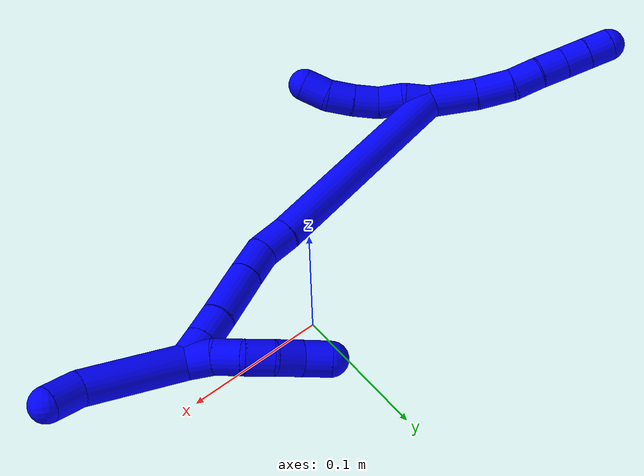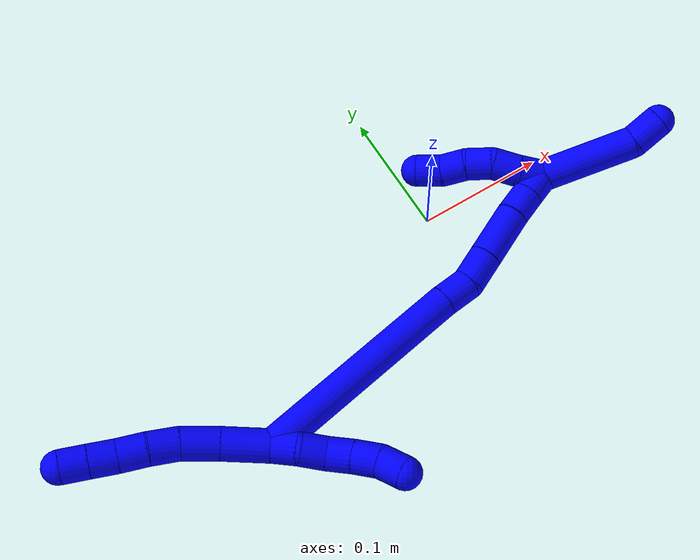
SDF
<sdf version="1.7">
 <world name="default">
  <model name="1">
   <static>0</static>
   <link name="1">
    <collision name="collision-cylinder-e_1_2_8">
     <pose>3e-05 -3.6e-05 0.018359 0.001963 0.001641 2e-06</pose>
     <geometry><cylinder><radius>0.0125</radius><length>0.036718</length></cylinder></geometry>
     <surface>
      <friction><ode><mu>1.16</mu><mu2>1.16</mu2><slip1>0</slip1><slip2>0</slip2></ode></friction>
      <contact><ode><kp>1e+06</kp><kd>1</kd><max_vel>0</max_vel><min_depth>0.001</min_depth></ode></contact>
     </surface>
    </collision>
    <visual name="visual-cylinder-e_1_2_8">
     <pose>3e-05 -3.6e-05 0.018359 0.001963 0.001641 2e-06</pose>
     <geometry><cylinder><radius>0.0125</radius><length>0.036718</length></cylinder></geometry>
     <material><ambient>0 0 1 1</ambient></material>
    </visual>
    <collision name="collision-cylinder-e_2_8_9">
     <pose>0.000289 -0.001512 0.051095 0.099801 0.015853 0.000792</pose>
     <geometry><cylinder><radius>0.0125</radius><length>0.028903</length></cylinder></geometry>
     <surface>
      <friction><ode><mu>1.16</mu><mu2>1.16</mu2><slip1>0</slip1><slip2>0</slip2></ode></friction>
      <contact><ode><kp>1e+06</kp><kd>1</kd><max_vel>0</max_vel><min_depth>0.001</min_depth></ode></contact>
     </surface>
    </collision>
    <visual name="visual-cylinder-e_2_8_9">
     <pose>0.000289 -0.001512 0.051095 0.099801 0.015853 0.000792</pose>
     <geometry><cylinder><radius>0.0125</radius><length>0.028903</length></cylinder></geometry>
     <material><ambient>0 0 1 1</ambient></material>
    </visual>
    <collision name="collision-cylinder-e_3_9_10">
     <pose>-0.000356 -0.005992 0.076378 0.271946 -0.077096 -0.010553</pose>
     <geometry><cylinder><radius>0.0125</radius><length>0.022709</length></cylinder></geometry>
     <surface>
      <friction><ode><mu>1.16</mu><mu2>1.16</mu2><slip1>0</slip1><slip2>0</slip2></ode></friction>
      <contact><ode><kp>1e+06</kp><kd>1</kd><max_vel>0</max_vel><min_depth>0.001</min_depth></ode></contact>
     </surface>
    </collision>
    <visual name="visual-cylinder-e_3_9_10">
     <pose>-0.000356 -0.005992 0.076378 0.271946 -0.077096 -0.010553</pose>
     <geometry><cylinder><radius>0.0125</radius><length>0.022709</length></cylinder></geometry>
     <material><ambient>0 0 1 1</ambient></material>
    </visual>
    <collision name="collision-cylinder-e_4_10_11">
     <pose>-0.003152 -0.011409 0.097521 0.228044 -0.180839 -0.020765</pose>
     <geometry><cylinder><radius>0.0125</radius><length>0.02137</length></cylinder></geometry>
     <surface>
      <friction><ode><mu>1.16</mu><mu2>1.16</mu2><slip1>0</slip1><slip2>0</slip2></ode></friction>
      <contact><ode><kp>1e+06</kp><kd>1</kd><max_vel>0</max_vel><min_depth>0.001</min_depth></ode></contact>
     </surface>
    </collision>
    <visual name="visual-cylinder-e_4_10_11">
     <pose>-0.003152 -0.011409 0.097521 0.228044 -0.180839 -0.020765</pose>
     <geometry><cylinder><radius>0.0125</radius><length>0.02137</length></cylinder></geometry>
     <material><ambient>0 0 1 1</ambient></material>
    </visual>
    <collision name="collision-cylinder-e_5_11_12">
     <pose>-0.00626 -0.016148 0.117515 0.237602 -0.117623 -0.014056</pose>
     <geometry><cylinder><radius>0.0125</radius><length>0.020213</length></cylinder></geometry>
     <surface>
      <friction><ode><mu>1.16</mu><mu2>1.16</mu2><slip1>0</slip1><slip2>0</slip2></ode></friction>
      <contact><ode><kp>1e+06</kp><kd>1</kd><max_vel>0</max_vel><min_depth>0.001</min_depth></ode></contact>
     </surface>
    </collision>
    <visual name="visual-cylinder-e_5_11_12">
     <pose>-0.00626 -0.016148 0.117515 0.237602 -0.117623 -0.014056</pose>
     <geometry><cylinder><radius>0.0125</radius><length>0.020213</length></cylinder></geometry>
     <material><ambient>0 0 1 1</ambient></material>
    </visual>
    <collision name="collision-cylinder-e_6_12_6">
     <pose>-0.008784 -0.020814 0.136953 0.233504 -0.133547 -0.015686</pose>
     <geometry><cylinder><radius>0.0125</radius><length>0.020087</length></cylinder></geometry>
     <surface>
      <friction><ode><mu>1.16</mu><mu2>1.16</mu2><slip1>0</slip1><slip2>0</slip2></ode></friction>
      <contact><ode><kp>1e+06</kp><kd>1</kd><max_vel>0</max_vel><min_depth>0.001</min_depth></ode></contact>
     </surface>
    </collision>
    <visual name="visual-cylinder-e_6_12_6">
     <pose>-0.008784 -0.020814 0.136953 0.233504 -0.133547 -0.015686</pose>
     <geometry><cylinder><radius>0.0125</radius><length>0.020087</length></cylinder></geometry>
     <material><ambient>0 0 1 1</ambient></material>
    </visual>
    <collision name="collision-cylinder-e_1_2_13">
     <pose>0.000846 -0.002404 -0.00967 2.89791 0.084709 0.66641</pose>
     <geometry><cylinder><radius>0.0125</radius><length>0.02</length></cylinder></geometry>
     <surface>
      <friction><ode><mu>1.16</mu><mu2>1.16</mu2><slip1>0</slip1><slip2>0</slip2></ode></friction>
      <contact><ode><kp>1e+06</kp><kd>1</kd><max_vel>0</max_vel><min_depth>0.001</min_depth></ode></contact>
     </surface>
    </collision>
    <visual name="visual-cylinder-e_1_2_13">
     <pose>0.000846 -0.002404 -0.00967 2.89791 0.084709 0.66641</pose>
     <geometry><cylinder><radius>0.0125</radius><length>0.02</length></cylinder></geometry>
     <material><ambient>0 0 1 1</ambient></material>
    </visual>
    <collision name="collision-cylinder-e_2_13_14">
     <pose>0.000185 -0.004862 -0.029225 3.13619 -0.151336 -3.07038</pose>
     <geometry><cylinder><radius>0.0125</radius><length>0.02</length></cylinder></geometry>
     <surface>
      <friction><ode><mu>1.16</mu><mu2>1.16</mu2><slip1>0</slip1><slip2>0</slip2></ode></friction>
      <contact><ode><kp>1e+06</kp><kd>1</kd><max_vel>0</max_vel><min_depth>0.001</min_depth></ode></contact>
     </surface>
    </collision>
    <visual name="visual-cylinder-e_2_13_14">
     <pose>0.000185 -0.004862 -0.029225 3.13619 -0.151336 -3.07038</pose>
     <geometry><cylinder><radius>0.0125</radius><length>0.02</length></cylinder></geometry>
     <material><ambient>0 0 1 1</ambient></material>
    </visual>
    <collision name="collision-cylinder-e_3_14_15">
     <pose>-0.000541 -0.007361 -0.048775 2.89375 0.078241 0.608916</pose>
     <geometry><cylinder><radius>0.0125</radius><length>0.02</length></cylinder></geometry>
     <surface>
      <friction><ode><mu>1.16</mu><mu2>1.16</mu2><slip1>0</slip1><slip2>0</slip2></ode></friction>
      <contact><ode><kp>1e+06</kp><kd>1</kd><max_vel>0</max_vel><min_depth>0.001</min_depth></ode></contact>
     </surface>
    </collision>
    <visual name="visual-cylinder-e_3_14_15">
     <pose>-0.000541 -0.007361 -0.048775 2.89375 0.078241 0.608916</pose>
     <geometry><cylinder><radius>0.0125</radius><length>0.02</length></cylinder></geometry>
     <material><ambient>0 0 1 1</ambient></material>
    </visual>
    <collision name="collision-cylinder-e_4_15_16">
     <pose>0.000851 -0.013107 -0.06786 2.8046 0.061073 0.355349</pose>
     <geometry><cylinder><radius>0.0125</radius><length>0.02</length></cylinder></geometry>
     <surface>
      <friction><ode><mu>1.16</mu><mu2>1.16</mu2><slip1>0</slip1><slip2>0</slip2></ode></friction>
      <contact><ode><kp>1e+06</kp><kd>1</kd><max_vel>0</max_vel><min_depth>0.001</min_depth></ode></contact>
     </surface>
    </collision>
    <visual name="visual-cylinder-e_4_15_16">
     <pose>0.000851 -0.013107 -0.06786 2.8046 0.061073 0.355349</pose>
     <geometry><cylinder><radius>0.0125</radius><length>0.02</length></cylinder></geometry>
     <material><ambient>0 0 1 1</ambient></material>
    </visual>
    <collision name="collision-cylinder-e_5_16_5">
     <pose>0.000591 -0.021902 -0.085589 2.55726 -0.087084 -0.287715</pose>
     <geometry><cylinder><radius>0.0125</radius><length>0.02</length></cylinder></geometry>
     <surface>
      <friction><ode><mu>1.16</mu><mu2>1.16</mu2><slip1>0</slip1><slip2>0</slip2></ode></friction>
      <contact><ode><kp>1e+06</kp><kd>1</kd><max_vel>0</max_vel><min_depth>0.001</min_depth></ode></contact>
     </surface>
    </collision>
    <visual name="visual-cylinder-e_5_16_5">
     <pose>0.000591 -0.021902 -0.085589 2.55726 -0.087084 -0.287715</pose>
     <geometry><cylinder><radius>0.0125</radius><length>0.02</length></cylinder></geometry>
     <material><ambient>0 0 1 1</ambient></material>
    </visual>
    <collision name="collision-cylinder-e_1_2_17">
     <pose>0.040876 0.04115 -0.061436 -2.55142 0.504985 -1.40759</pose>
     <geometry><cylinder><radius>0.0125</radius><length>0.16898</length></cylinder></geometry>
     <surface>
      <friction><ode><mu>1.16</mu><mu2>1.16</mu2><slip1>0</slip1><slip2>0</slip2></ode></friction>
      <contact><ode><kp>1e+06</kp><kd>1</kd><max_vel>0</max_vel><min_depth>0.001</min_depth></ode></contact>
     </surface>
    </collision>
    <visual name="visual-cylinder-e_1_2_17">
     <pose>0.040876 0.04115 -0.061436 -2.55142 0.504985 -1.40759</pose>
     <geometry><cylinder><radius>0.0125</radius><length>0.16898</length></cylinder></geometry>
     <material><ambient>0 0 1 1</ambient></material>
    </visual>
    <collision name="collision-cylinder-e_2_17_18">
     <pose>0.087232 0.087373 -0.132036 -2.636 0.482106 -1.52127</pose>
     <geometry><cylinder><radius>0.0125</radius><length>0.023643</length></cylinder></geometry>
     <surface>
      <friction><ode><mu>1.16</mu><mu2>1.16</mu2><slip1>0</slip1><slip2>0</slip2></ode></friction>
      <contact><ode><kp>1e+06</kp><kd>1</kd><max_vel>0</max_vel><min_depth>0.001</min_depth></ode></contact>
     </surface>
    </collision>
    <visual name="visual-cylinder-e_2_17_18">
     <pose>0.087232 0.087373 -0.132036 -2.636 0.482106 -1.52127</pose>
     <geometry><cylinder><radius>0.0125</radius><length>0.023643</length></cylinder></geometry>
     <material><ambient>0 0 1 1</ambient></material>
    </visual>
    <collision name="collision-cylinder-e_3_18_19">
     <pose>0.100964 0.099544 -0.147731 -2.31466 0.707591 -1.3994</pose>
     <geometry><cylinder><radius>0.0125</radius><length>0.025386</length></cylinder></geometry>
     <surface>
      <friction><ode><mu>1.16</mu><mu2>1.16</mu2><slip1>0</slip1><slip2>0</slip2></ode></friction>
      <contact><ode><kp>1e+06</kp><kd>1</kd><max_vel>0</max_vel><min_depth>0.001</min_depth></ode></contact>
     </surface>
    </collision>
    <visual name="visual-cylinder-e_3_18_19">
     <pose>0.100964 0.099544 -0.147731 -2.31466 0.707591 -1.3994</pose>
     <geometry><cylinder><radius>0.0125</radius><length>0.025386</length></cylinder></geometry>
     <material><ambient>0 0 1 1</ambient></material>
    </visual>
    <collision name="collision-cylinder-e_4_19_20">
     <pose>0.121961 0.118357 -0.164597 -2.29366 0.684372 -1.33625</pose>
     <geometry><cylinder><radius>0.0125</radius><length>0.040325</length></cylinder></geometry>
     <surface>
      <friction><ode><mu>1.16</mu><mu2>1.16</mu2><slip1>0</slip1><slip2>0</slip2></ode></friction>
      <contact><ode><kp>1e+06</kp><kd>1</kd><max_vel>0</max_vel><min_depth>0.001</min_depth></ode></contact>
     </surface>
    </collision>
    <visual name="visual-cylinder-e_4_19_20">
     <pose>0.121961 0.118357 -0.164597 -2.29366 0.684372 -1.33625</pose>
     <geometry><cylinder><radius>0.0125</radius><length>0.040325</length></cylinder></geometry>
     <material><ambient>0 0 1 1</ambient></material>
    </visual>
    <collision name="collision-cylinder-e_5_20_21">
     <pose>0.140854 0.136486 -0.180933 -2.32293 0.610625 -1.25654</pose>
     <geometry><cylinder><radius>0.0125</radius><length>0.02144</length></cylinder></geometry>
     <surface>
      <friction><ode><mu>1.16</mu><mu2>1.16</mu2><slip1>0</slip1><slip2>0</slip2></ode></friction>
      <contact><ode><kp>1e+06</kp><kd>1</kd><max_vel>0</max_vel><min_depth>0.001</min_depth></ode></contact>
     </surface>
    </collision>
    <visual name="visual-cylinder-e_5_20_21">
     <pose>0.140854 0.136486 -0.180933 -2.32293 0.610625 -1.25654</pose>
     <geometry><cylinder><radius>0.0125</radius><length>0.02144</length></cylinder></geometry>
     <material><ambient>0 0 1 1</ambient></material>
    </visual>
    <collision name="collision-cylinder-e_6_21_1">
     <pose>0.15284 0.148803 -0.192705 -2.34495 0.615566 -1.2939</pose>
     <geometry><cylinder><radius>0.0125</radius><length>0.020226</length></cylinder></geometry>
     <surface>
      <friction><ode><mu>1.16</mu><mu2>1.16</mu2><slip1>0</slip1><slip2>0</slip2></ode></friction>
      <contact><ode><kp>1e+06</kp><kd>1</kd><max_vel>0</max_vel><min_depth>0.001</min_depth></ode></contact>
     </surface>
    </collision>
    <visual name="visual-cylinder-e_6_21_1">
     <pose>0.15284 0.148803 -0.192705 -2.34495 0.615566 -1.2939</pose>
     <geometry><cylinder><radius>0.0125</radius><length>0.020226</length></cylinder></geometry>
     <material><ambient>0 0 1 1</ambient></material>
    </visual>
    <collision name="collision-cylinder-e_1_1_22">
     <pose>0.174164 0.15632 -0.232429 -3.09411 0.427464 -2.92364</pose>
     <geometry><cylinder><radius>0.0125</radius><length>0.0747</length></cylinder></geometry>
     <surface>
      <friction><ode><mu>1.16</mu><mu2>1.16</mu2><slip1>0</slip1><slip2>0</slip2></ode></friction>
      <contact><ode><kp>1e+06</kp><kd>1</kd><max_vel>0</max_vel><min_depth>0.001</min_depth></ode></contact>
     </surface>
    </collision>
    <visual name="visual-cylinder-e_1_1_22">
     <pose>0.174164 0.15632 -0.232429 -3.09411 0.427464 -2.92364</pose>
     <geometry><cylinder><radius>0.0125</radius><length>0.0747</length></cylinder></geometry>
     <material><ambient>0 0 1 1</ambient></material>
    </visual>
    <collision name="collision-cylinder-e_2_22_4">
     <pose>0.198006 0.160412 -0.275546 -2.87747 0.721824 -2.4648</pose>
     <geometry><cylinder><radius>0.0125</radius><length>0.0253</length></cylinder></geometry>
     <surface>
      <friction><ode><mu>1.16</mu><mu2>1.16</mu2><slip1>0</slip1><slip2>0</slip2></ode></friction>
      <contact><ode><kp>1e+06</kp><kd>1</kd><max_vel>0</max_vel><min_depth>0.001</min_depth></ode></contact>
     </surface>
    </collision>
    <visual name="visual-cylinder-e_2_22_4">
     <pose>0.198006 0.160412 -0.275546 -2.87747 0.721824 -2.4648</pose>
     <geometry><cylinder><radius>0.0125</radius><length>0.0253</length></cylinder></geometry>
     <material><ambient>0 0 1 1</ambient></material>
    </visual>
    <collision name="collision-cylinder-e_1_1_23">
     <pose>0.160434 0.154211 -0.188645 0.050345 0.176321 0.004451</pose>
     <geometry><cylinder><radius>0.0125</radius><length>0.02</length></cylinder></geometry>
     <surface>
      <friction><ode><mu>1.16</mu><mu2>1.16</mu2><slip1>0</slip1><slip2>0</slip2></ode></friction>
      <contact><ode><kp>1e+06</kp><kd>1</kd><max_vel>0</max_vel><min_depth>0.001</min_depth></ode></contact>
     </surface>
    </collision>
    <visual name="visual-cylinder-e_1_1_23">
     <pose>0.160434 0.154211 -0.188645 0.050345 0.176321 0.004451</pose>
     <geometry><cylinder><radius>0.0125</radius><length>0.02</length></cylinder></geometry>
     <material><ambient>0 0 1 1</ambient></material>
    </visual>
    <collision name="collision-cylinder-e_2_23_24">
     <pose>0.163986 0.155315 -0.169107 -0.163346 0.180822 -0.014841</pose>
     <geometry><cylinder><radius>0.0125</radius><length>0.02</length></cylinder></geometry>
     <surface>
      <friction><ode><mu>1.16</mu><mu2>1.16</mu2><slip1>0</slip1><slip2>0</slip2></ode></friction>
      <contact><ode><kp>1e+06</kp><kd>1</kd><max_vel>0</max_vel><min_depth>0.001</min_depth></ode></contact>
     </surface>
    </collision>
    <visual name="visual-cylinder-e_2_23_24">
     <pose>0.163986 0.155315 -0.169107 -0.163346 0.180822 -0.014841</pose>
     <geometry><cylinder><radius>0.0125</radius><length>0.02</length></cylinder></geometry>
     <material><ambient>0 0 1 1</ambient></material>
    </visual>
    <collision name="collision-cylinder-e_3_24_25">
     <pose>0.164199 0.158746 -0.149698 -0.186524 -0.159205 0.014922</pose>
     <geometry><cylinder><radius>0.0125</radius><length>0.02</length></cylinder></geometry>
     <surface>
      <friction><ode><mu>1.16</mu><mu2>1.16</mu2><slip1>0</slip1><slip2>0</slip2></ode></friction>
      <contact><ode><kp>1e+06</kp><kd>1</kd><max_vel>0</max_vel><min_depth>0.001</min_depth></ode></contact>
     </surface>
    </collision>
    <visual name="visual-cylinder-e_3_24_25">
     <pose>0.164199 0.158746 -0.149698 -0.186524 -0.159205 0.014922</pose>
     <geometry><cylinder><radius>0.0125</radius><length>0.02</length></cylinder></geometry>
     <material><ambient>0 0 1 1</ambient></material>
    </visual>
    <collision name="collision-cylinder-e_4_25_26">
     <pose>0.158652 0.162586 -0.131037 -0.220578 -0.40733 0.045733</pose>
     <geometry><cylinder><radius>0.0125</radius><length>0.02</length></cylinder></geometry>
     <surface>
      <friction><ode><mu>1.16</mu><mu2>1.16</mu2><slip1>0</slip1><slip2>0</slip2></ode></friction>
      <contact><ode><kp>1e+06</kp><kd>1</kd><max_vel>0</max_vel><min_depth>0.001</min_depth></ode></contact>
     </surface>
    </collision>
    <visual name="visual-cylinder-e_4_25_26">
     <pose>0.158652 0.162586 -0.131037 -0.220578 -0.40733 0.045733</pose>
     <geometry><cylinder><radius>0.0125</radius><length>0.02</length></cylinder></geometry>
     <material><ambient>0 0 1 1</ambient></material>
    </visual>
    <collision name="collision-cylinder-e_5_26_3">
     <pose>0.153315 0.166561 -0.11237 -0.199793 -0.138057 0.013859</pose>
     <geometry><cylinder><radius>0.0125</radius><length>0.02</length></cylinder></geometry>
     <surface>
      <friction><ode><mu>1.16</mu><mu2>1.16</mu2><slip1>0</slip1><slip2>0</slip2></ode></friction>
      <contact><ode><kp>1e+06</kp><kd>1</kd><max_vel>0</max_vel><min_depth>0.001</min_depth></ode></contact>
     </surface>
    </collision>
    <visual name="visual-cylinder-e_5_26_3">
     <pose>0.153315 0.166561 -0.11237 -0.199793 -0.138057 0.013859</pose>
     <geometry><cylinder><radius>0.0125</radius><length>0.02</length></cylinder></geometry>
     <material><ambient>0 0 1 1</ambient></material>
    </visual>
    <collision name="collision-sphere-3">
     <pose>0.151938 0.168526 -0.102662 0 -0 0</pose>
     <geometry><sphere><radius>0.0125</radius></sphere></geometry>
     <surface>
      <friction><ode><mu>1.16</mu><mu2>1.16</mu2><slip1>0</slip1><slip2>0</slip2></ode></friction>
      <contact><ode><kp>1e+06</kp><kd>1</kd><max_vel>0</max_vel><min_depth>0.001</min_depth></ode></contact>
     </surface>
    </collision>
    <visual name="visual-sphere-3">
     <pose>0.151938 0.168526 -0.102662 0 -0 0</pose>
     <geometry><sphere><radius>0.0125</radius></sphere></geometry>
     <material><ambient>0 0 1 1</ambient></material>
    </visual>
    <collision name="collision-sphere-26">
     <pose>0.154691 0.164595 -0.122077 0 -0 0</pose>
     <geometry><sphere><radius>0.0125</radius></sphere></geometry>
     <surface>
      <friction><ode><mu>1.16</mu><mu2>1.16</mu2><slip1>0</slip1><slip2>0</slip2></ode></friction>
      <contact><ode><kp>1e+06</kp><kd>1</kd><max_vel>0</max_vel><min_depth>0.001</min_depth></ode></contact>
     </surface>
    </collision>
    <visual name="visual-sphere-26">
     <pose>0.154691 0.164595 -0.122077 0 -0 0</pose>
     <geometry><sphere><radius>0.0125</radius></sphere></geometry>
     <material><ambient>0 0 1 1</ambient></material>
    </visual>
    <collision name="collision-sphere-25">
     <pose>0.162614 0.160577 -0.139996 0 -0 0</pose>
     <geometry><sphere><radius>0.0125</radius></sphere></geometry>
     <surface>
      <friction><ode><mu>1.16</mu><mu2>1.16</mu2><slip1>0</slip1><slip2>0</slip2></ode></friction>
      <contact><ode><kp>1e+06</kp><kd>1</kd><max_vel>0</max_vel><min_depth>0.001</min_depth></ode></contact>
     </surface>
    </collision>
    <visual name="visual-sphere-25">
     <pose>0.162614 0.160577 -0.139996 0 -0 0</pose>
     <geometry><sphere><radius>0.0125</radius></sphere></geometry>
     <material><ambient>0 0 1 1</ambient></material>
    </visual>
    <collision name="collision-sphere-24">
     <pose>0.165785 0.156915 -0.159401 0 -0 0</pose>
     <geometry><sphere><radius>0.0125</radius></sphere></geometry>
     <surface>
      <friction><ode><mu>1.16</mu><mu2>1.16</mu2><slip1>0</slip1><slip2>0</slip2></ode></friction>
      <contact><ode><kp>1e+06</kp><kd>1</kd><max_vel>0</max_vel><min_depth>0.001</min_depth></ode></contact>
     </surface>
    </collision>
    <visual name="visual-sphere-24">
     <pose>0.165785 0.156915 -0.159401 0 -0 0</pose>
     <geometry><sphere><radius>0.0125</radius></sphere></geometry>
     <material><ambient>0 0 1 1</ambient></material>
    </visual>
    <collision name="collision-sphere-23">
     <pose>0.162188 0.153716 -0.178813 0 -0 0</pose>
     <geometry><sphere><radius>0.0125</radius></sphere></geometry>
     <surface>
      <friction><ode><mu>1.16</mu><mu2>1.16</mu2><slip1>0</slip1><slip2>0</slip2></ode></friction>
      <contact><ode><kp>1e+06</kp><kd>1</kd><max_vel>0</max_vel><min_depth>0.001</min_depth></ode></contact>
     </surface>
    </collision>
    <visual name="visual-sphere-23">
     <pose>0.162188 0.153716 -0.178813 0 -0 0</pose>
     <geometry><sphere><radius>0.0125</radius></sphere></geometry>
     <material><ambient>0 0 1 1</ambient></material>
    </visual>
    <collision name="collision-sphere-4">
     <pose>0.206365 0.162891 -0.284711 0 -0 0</pose>
     <geometry><sphere><radius>0.0125</radius></sphere></geometry>
     <surface>
      <friction><ode><mu>1.16</mu><mu2>1.16</mu2><slip1>0</slip1><slip2>0</slip2></ode></friction>
      <contact><ode><kp>1e+06</kp><kd>1</kd><max_vel>0</max_vel><min_depth>0.001</min_depth></ode></contact>
     </surface>
    </collision>
    <visual name="visual-sphere-4">
     <pose>0.206365 0.162891 -0.284711 0 -0 0</pose>
     <geometry><sphere><radius>0.0125</radius></sphere></geometry>
     <material><ambient>0 0 1 1</ambient></material>
    </visual>
    <collision name="collision-sphere-22">
     <pose>0.189648 0.157933 -0.26638 0 -0 0</pose>
     <geometry><sphere><radius>0.0125</radius></sphere></geometry>
     <surface>
      <friction><ode><mu>1.16</mu><mu2>1.16</mu2><slip1>0</slip1><slip2>0</slip2></ode></friction>
      <contact><ode><kp>1e+06</kp><kd>1</kd><max_vel>0</max_vel><min_depth>0.001</min_depth></ode></contact>
     </surface>
    </collision>
    <visual name="visual-sphere-22">
     <pose>0.189648 0.157933 -0.26638 0 -0 0</pose>
     <geometry><sphere><radius>0.0125</radius></sphere></geometry>
     <material><ambient>0 0 1 1</ambient></material>
    </visual>
    <collision name="collision-sphere-1">
     <pose>0.15868 0.154707 -0.198478 0 -0 0</pose>
     <geometry><sphere><radius>0.0125</radius></sphere></geometry>
     <surface>
      <friction><ode><mu>1.16</mu><mu2>1.16</mu2><slip1>0</slip1><slip2>0</slip2></ode></friction>
      <contact><ode><kp>1e+06</kp><kd>1</kd><max_vel>0</max_vel><min_depth>0.001</min_depth></ode></contact>
     </surface>
    </collision>
    <visual name="visual-sphere-1">
     <pose>0.15868 0.154707 -0.198478 0 -0 0</pose>
     <geometry><sphere><radius>0.0125</radius></sphere></geometry>
     <material><ambient>0 0 1 1</ambient></material>
    </visual>
    <collision name="collision-sphere-21">
     <pose>0.147001 0.142899 -0.186933 0 -0 0</pose>
     <geometry><sphere><radius>0.0125</radius></sphere></geometry>
     <surface>
      <friction><ode><mu>1.16</mu><mu2>1.16</mu2><slip1>0</slip1><slip2>0</slip2></ode></friction>
      <contact><ode><kp>1e+06</kp><kd>1</kd><max_vel>0</max_vel><min_depth>0.001</min_depth></ode></contact>
     </surface>
    </collision>
    <visual name="visual-sphere-21">
     <pose>0.147001 0.142899 -0.186933 0 -0 0</pose>
     <geometry><sphere><radius>0.0125</radius></sphere></geometry>
     <material><ambient>0 0 1 1</ambient></material>
    </visual>
    <collision name="collision-sphere-12">
     <pose>-0.007446 -0.01851 0.127269 0 -0 0</pose>
     <geometry><sphere><radius>0.0125</radius></sphere></geometry>
     <surface>
      <friction><ode><mu>1.16</mu><mu2>1.16</mu2><slip1>0</slip1><slip2>0</slip2></ode></friction>
      <contact><ode><kp>1e+06</kp><kd>1</kd><max_vel>0</max_vel><min_depth>0.001</min_depth></ode></contact>
     </surface>
    </collision>
    <visual name="visual-sphere-12">
     <pose>-0.007446 -0.01851 0.127269 0 -0 0</pose>
     <geometry><sphere><radius>0.0125</radius></sphere></geometry>
     <material><ambient>0 0 1 1</ambient></material>
    </visual>
    <collision name="collision-sphere-11">
     <pose>-0.005074 -0.013786 0.10776 0 -0 0</pose>
     <geometry><sphere><radius>0.0125</radius></sphere></geometry>
     <surface>
      <friction><ode><mu>1.16</mu><mu2>1.16</mu2><slip1>0</slip1><slip2>0</slip2></ode></friction>
      <contact><ode><kp>1e+06</kp><kd>1</kd><max_vel>0</max_vel><min_depth>0.001</min_depth></ode></contact>
     </surface>
    </collision>
    <visual name="visual-sphere-11">
     <pose>-0.005074 -0.013786 0.10776 0 -0 0</pose>
     <geometry><sphere><radius>0.0125</radius></sphere></geometry>
     <material><ambient>0 0 1 1</ambient></material>
    </visual>
    <collision name="collision-sphere-10">
     <pose>-0.001231 -0.009033 0.087282 0 -0 0</pose>
     <geometry><sphere><radius>0.0125</radius></sphere></geometry>
     <surface>
      <friction><ode><mu>1.16</mu><mu2>1.16</mu2><slip1>0</slip1><slip2>0</slip2></ode></friction>
      <contact><ode><kp>1e+06</kp><kd>1</kd><max_vel>0</max_vel><min_depth>0.001</min_depth></ode></contact>
     </surface>
    </collision>
    <visual name="visual-sphere-10">
     <pose>-0.001231 -0.009033 0.087282 0 -0 0</pose>
     <geometry><sphere><radius>0.0125</radius></sphere></geometry>
     <material><ambient>0 0 1 1</ambient></material>
    </visual>
    <collision name="collision-sphere-9">
     <pose>0.000518 -0.002951 0.065473 0 -0 0</pose>
     <geometry><sphere><radius>0.0125</radius></sphere></geometry>
     <surface>
      <friction><ode><mu>1.16</mu><mu2>1.16</mu2><slip1>0</slip1><slip2>0</slip2></ode></friction>
      <contact><ode><kp>1e+06</kp><kd>1</kd><max_vel>0</max_vel><min_depth>0.001</min_depth></ode></contact>
     </surface>
    </collision>
    <visual name="visual-sphere-9">
     <pose>0.000518 -0.002951 0.065473 0 -0 0</pose>
     <geometry><sphere><radius>0.0125</radius></sphere></geometry>
     <material><ambient>0 0 1 1</ambient></material>
    </visual>
    <collision name="collision-sphere-2">
     <geometry><sphere><radius>0.0125</radius></sphere></geometry>
     <surface>
      <friction><ode><mu>1.16</mu><mu2>1.16</mu2><slip1>0</slip1><slip2>0</slip2></ode></friction>
      <contact><ode><kp>1e+06</kp><kd>1</kd><max_vel>0</max_vel><min_depth>0.001</min_depth></ode></contact>
     </surface>
    </collision>
    <visual name="visual-sphere-2">
     <geometry><sphere><radius>0.0125</radius></sphere></geometry>
     <material><ambient>0 0 1 1</ambient></material>
    </visual>
    <collision name="collision-sphere-19">
     <pose>0.109215 0.106642 -0.154263 0 -0 0</pose>
     <geometry><sphere><radius>0.0125</radius></sphere></geometry>
     <surface>
      <friction><ode><mu>1.16</mu><mu2>1.16</mu2><slip1>0</slip1><slip2>0</slip2></ode></friction>
      <contact><ode><kp>1e+06</kp><kd>1</kd><max_vel>0</max_vel><min_depth>0.001</min_depth></ode></contact>
     </surface>
    </collision>
    <visual name="visual-sphere-19">
     <pose>0.109215 0.106642 -0.154263 0 -0 0</pose>
     <geometry><sphere><radius>0.0125</radius></sphere></geometry>
     <material><ambient>0 0 1 1</ambient></material>
    </visual>
    <collision name="collision-sphere-8">
     <pose>6e-05 -7.2e-05 0.036717 0 -0 0</pose>
     <geometry><sphere><radius>0.0125</radius></sphere></geometry>
     <surface>
      <friction><ode><mu>1.16</mu><mu2>1.16</mu2><slip1>0</slip1><slip2>0</slip2></ode></friction>
      <contact><ode><kp>1e+06</kp><kd>1</kd><max_vel>0</max_vel><min_depth>0.001</min_depth></ode></contact>
     </surface>
    </collision>
    <visual name="visual-sphere-8">
     <pose>6e-05 -7.2e-05 0.036717 0 -0 0</pose>
     <geometry><sphere><radius>0.0125</radius></sphere></geometry>
     <material><ambient>0 0 1 1</ambient></material>
    </visual>
    <collision name="collision-sphere-6">
     <pose>-0.010121 -0.023117 0.146637 0 -0 0</pose>
     <geometry><sphere><radius>0.0125</radius></sphere></geometry>
     <surface>
      <friction><ode><mu>1.16</mu><mu2>1.16</mu2><slip1>0</slip1><slip2>0</slip2></ode></friction>
      <contact><ode><kp>1e+06</kp><kd>1</kd><max_vel>0</max_vel><min_depth>0.001</min_depth></ode></contact>
     </surface>
    </collision>
    <visual name="visual-sphere-6">
     <pose>-0.010121 -0.023117 0.146637 0 -0 0</pose>
     <geometry><sphere><radius>0.0125</radius></sphere></geometry>
     <material><ambient>0 0 1 1</ambient></material>
    </visual>
    <collision name="collision-sphere-13">
     <pose>0.001692 -0.004808 -0.01934 0 -0 0</pose>
     <geometry><sphere><radius>0.0125</radius></sphere></geometry>
     <surface>
      <friction><ode><mu>1.16</mu><mu2>1.16</mu2><slip1>0</slip1><slip2>0</slip2></ode></friction>
      <contact><ode><kp>1e+06</kp><kd>1</kd><max_vel>0</max_vel><min_depth>0.001</min_depth></ode></contact>
     </surface>
    </collision>
    <visual name="visual-sphere-13">
     <pose>0.001692 -0.004808 -0.01934 0 -0 0</pose>
     <geometry><sphere><radius>0.0125</radius></sphere></geometry>
     <material><ambient>0 0 1 1</ambient></material>
    </visual>
    <collision name="collision-sphere-14">
     <pose>-0.001323 -0.004915 -0.039111 0 -0 0</pose>
     <geometry><sphere><radius>0.0125</radius></sphere></geometry>
     <surface>
      <friction><ode><mu>1.16</mu><mu2>1.16</mu2><slip1>0</slip1><slip2>0</slip2></ode></friction>
      <contact><ode><kp>1e+06</kp><kd>1</kd><max_vel>0</max_vel><min_depth>0.001</min_depth></ode></contact>
     </surface>
    </collision>
    <visual name="visual-sphere-14">
     <pose>-0.001323 -0.004915 -0.039111 0 -0 0</pose>
     <geometry><sphere><radius>0.0125</radius></sphere></geometry>
     <material><ambient>0 0 1 1</ambient></material>
    </visual>
    <collision name="collision-sphere-15">
     <pose>0.00024 -0.009806 -0.05844 0 -0 0</pose>
     <geometry><sphere><radius>0.0125</radius></sphere></geometry>
     <surface>
      <friction><ode><mu>1.16</mu><mu2>1.16</mu2><slip1>0</slip1><slip2>0</slip2></ode></friction>
      <contact><ode><kp>1e+06</kp><kd>1</kd><max_vel>0</max_vel><min_depth>0.001</min_depth></ode></contact>
     </surface>
    </collision>
    <visual name="visual-sphere-15">
     <pose>0.00024 -0.009806 -0.05844 0 -0 0</pose>
     <geometry><sphere><radius>0.0125</radius></sphere></geometry>
     <material><ambient>0 0 1 1</ambient></material>
    </visual>
    <collision name="collision-sphere-16">
     <pose>0.001461 -0.016407 -0.07728 0 -0 0</pose>
     <geometry><sphere><radius>0.0125</radius></sphere></geometry>
     <surface>
      <friction><ode><mu>1.16</mu><mu2>1.16</mu2><slip1>0</slip1><slip2>0</slip2></ode></friction>
      <contact><ode><kp>1e+06</kp><kd>1</kd><max_vel>0</max_vel><min_depth>0.001</min_depth></ode></contact>
     </surface>
    </collision>
    <visual name="visual-sphere-16">
     <pose>0.001461 -0.016407 -0.07728 0 -0 0</pose>
     <geometry><sphere><radius>0.0125</radius></sphere></geometry>
     <material><ambient>0 0 1 1</ambient></material>
    </visual>
    <collision name="collision-sphere-5">
     <pose>-0.000279 -0.027398 -0.093898 0 -0 0</pose>
     <geometry><sphere><radius>0.0125</radius></sphere></geometry>
     <surface>
      <friction><ode><mu>1.16</mu><mu2>1.16</mu2><slip1>0</slip1><slip2>0</slip2></ode></friction>
      <contact><ode><kp>1e+06</kp><kd>1</kd><max_vel>0</max_vel><min_depth>0.001</min_depth></ode></contact>
     </surface>
    </collision>
    <visual name="visual-sphere-5">
     <pose>-0.000279 -0.027398 -0.093898 0 -0 0</pose>
     <geometry><sphere><radius>0.0125</radius></sphere></geometry>
     <material><ambient>0 0 1 1</ambient></material>
    </visual>
    <collision name="collision-sphere-17">
     <pose>0.081751 0.0823 -0.122872 0 -0 0</pose>
     <geometry><sphere><radius>0.0125</radius></sphere></geometry>
     <surface>
      <friction><ode><mu>1.16</mu><mu2>1.16</mu2><slip1>0</slip1><slip2>0</slip2></ode></friction>
      <contact><ode><kp>1e+06</kp><kd>1</kd><max_vel>0</max_vel><min_depth>0.001</min_depth></ode></contact>
     </surface>
    </collision>
    <visual name="visual-sphere-17">
     <pose>0.081751 0.0823 -0.122872 0 -0 0</pose>
     <geometry><sphere><radius>0.0125</radius></sphere></geometry>
     <material><ambient>0 0 1 1</ambient></material>
    </visual>
    <collision name="collision-sphere-18">
     <pose>0.092713 0.092446 -0.1412 0 -0 0</pose>
     <geometry><sphere><radius>0.0125</radius></sphere></geometry>
     <surface>
      <friction><ode><mu>1.16</mu><mu2>1.16</mu2><slip1>0</slip1><slip2>0</slip2></ode></friction>
      <contact><ode><kp>1e+06</kp><kd>1</kd><max_vel>0</max_vel><min_depth>0.001</min_depth></ode></contact>
     </surface>
    </collision>
    <visual name="visual-sphere-18">
     <pose>0.092713 0.092446 -0.1412 0 -0 0</pose>
     <geometry><sphere><radius>0.0125</radius></sphere></geometry>
     <material><ambient>0 0 1 1</ambient></material>
    </visual>
    <collision name="collision-sphere-20">
     <pose>0.134707 0.130072 -0.174932 0 -0 0</pose>
     <geometry><sphere><radius>0.0125</radius></sphere></geometry>
     <surface>
      <friction><ode><mu>1.16</mu><mu2>1.16</mu2><slip1>0</slip1><slip2>0</slip2></ode></friction>
      <contact><ode><kp>1e+06</kp><kd>1</kd><max_vel>0</max_vel><min_depth>0.001</min_depth></ode></contact>
     </surface>
    </collision>
    <visual name="visual-sphere-20">
     <pose>0.134707 0.130072 -0.174932 0 -0 0</pose>
     <geometry><sphere><radius>0.0125</radius></sphere></geometry>
     <material><ambient>0 0 1 1</ambient></material>
    </visual>
    <inertial>
     <pose>0.075017 0.069036 -0.086327 0 -0 0</pose>
     <mass>0.75</mass>
     <inertia>
      <ixx>-0.000305</ixx>
      <ixy>0</ixy>
      <ixz>0</ixz>
      <iyy>-0.000246</iyy>
      <iyz>0</iyz>
      <izz>-0.000439</izz>
     </inertia>
    </inertial>
   </link>
   <pose>-0.195754 -0.099029 0.013398 -1.43242 -0.868417 0.895305</pose>
  </model>
 </world>
</sdf>
